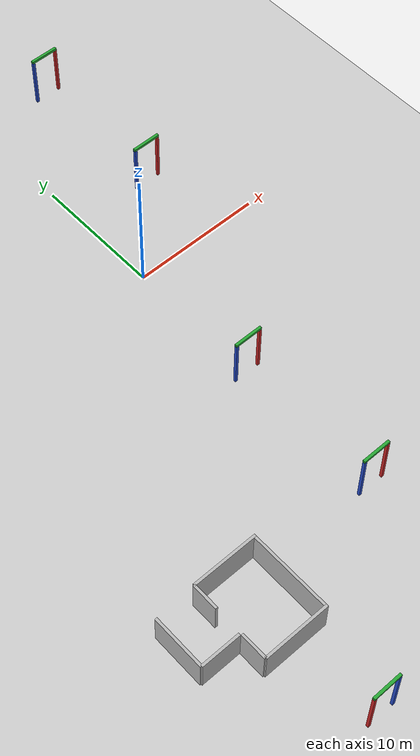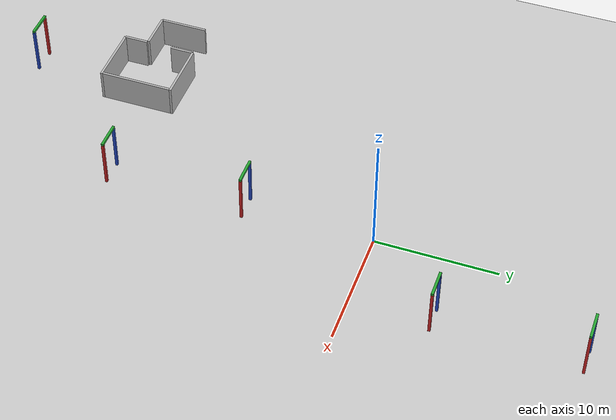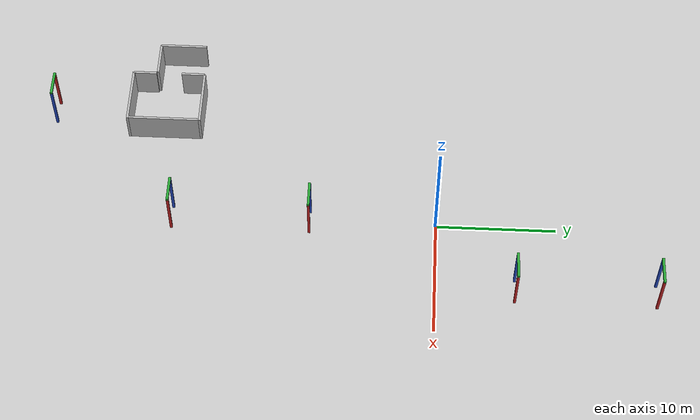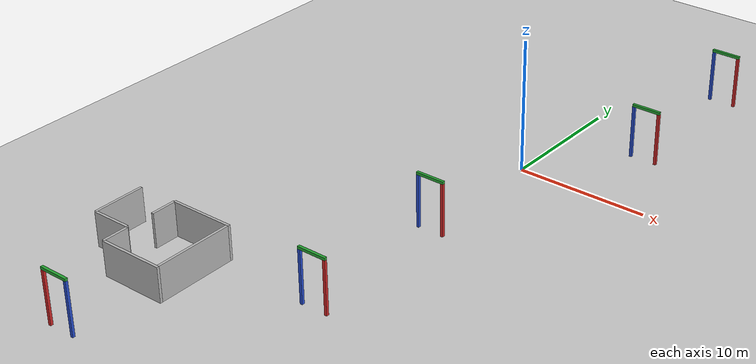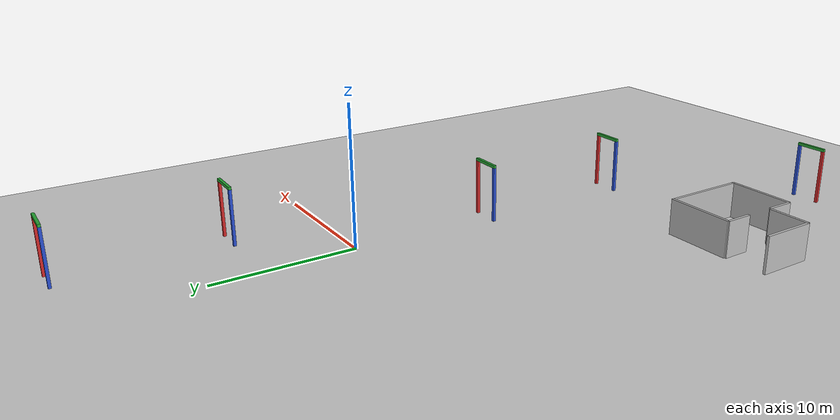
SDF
<sdf version="1.4">
 <world name="vrc_task_2">
  <scene><ambient>0.2 0.2 0.2 1.0</ambient></scene>
  <physics type="ode">
   <gravity>0 0 -9.81</gravity>
   <ode>
    <solver><type>quick</type><iters>50</iters><sor>1.4</sor></solver>
    <constraints>
     <cfm>0.0</cfm>
     <erp>0.2</erp>
     <contact_max_correcting_vel>100.0</contact_max_correcting_vel>
     <contact_surface_layer>0.0</contact_surface_layer>
    </constraints>
   </ode>
   <real_time_update_rate>1000</real_time_update_rate>
   <max_step_size>0.001</max_step_size>
  </physics>
  <light type="directional" name="sun">
   <pose>0 0 100 0 0 0</pose>
   <diffuse>0.8 0.8 0.8 1</diffuse>
   <specular>0.1 0.1 0.1 1</specular>
   <attenuation>
    <range>1000</range>
    <constant>0.9</constant>
    <linear>0.01</linear>
    <quadratic>0.001</quadratic>
   </attenuation>
   <direction>0.2 0.0 -1.0</direction>
  </light>
  <light type="point" name="light_bulb">
   <cast_shadows>false</cast_shadows>
   <pose>-14.12 -25.34 5 0 0 0</pose>
   <diffuse>0.3 0.3 0.3 1</diffuse>
   <specular>0.0 0.0 0.0 1</specular>
   <attenuation>
    <range>80</range>
    <constant>0.9</constant>
    <linear>0.01</linear>
    <quadratic>0.001</quadratic>
   </attenuation>
  </light>
  <include><uri>model://starting_pen</uri><pose>-10.713 -23.566 0.02 0 0 -3.14159265</pose></include>
  <include><uri>model://gate</uri><name>gate_0</name><pose>-10.4149 -33.0149 2.0 0 0 -1.5707</pose></include>
  <include><uri>model://gate</uri><name>gate_1</name><pose>0 -22 2.0 0 0 1.5707</pose></include>
  <include><uri>model://gate</uri><name>gate_2</name><pose>0 -10.5 2.0 0 0 1.5707</pose></include>
  <include><uri>model://gate</uri><name>gate_3</name><pose>6.0 6.5 2.0 0 0 1.5707</pose></include>
  <include><uri>model://gate</uri><name>gate_4</name><pose>6 18 2 0 0 1.5707</pose></include>
  <model name="mud_ground_plane">
   <static>true</static>
   <pose>0.0 0.0 -0.59 0 0 0</pose>
   <link name="link">
    <collision name="collision">
     <geometry><plane><normal>0 0 1</normal><size>100 100</size></plane></geometry>
     <surface><friction><ode><mu>.5</mu><mu2>.5</mu2></ode></friction></surface>
    </collision>
    <visual name="visual">
     <cast_shadows>false</cast_shadows>
     <geometry><plane><normal>0 0 1</normal><size>100 100</size></plane></geometry>
     <material>
      <script>
       <uri>model://mud_box/materials/scripts</uri>
       <uri>model://mud_box/materials/textures</uri>
       <name>vrc/mud</name>
      </script>
     </material>
    </visual>
   </link>
  </model>
  <plugin filename="libVRCPlugin.so" name="vrc_plugin">
   <atlas><model_name>atlas</model_name><pin_link>utorso</pin_link></atlas>
   <drc_vehicle><model_name>golf_cart</model_name><seat_link>chassis</seat_link></drc_vehicle>
   <drc_fire_hose>
    <fire_hose_model>fire_hose</fire_hose_model>
    <coupling_link>coupling</coupling_link>
    <standpipe_model>standpipe</standpipe_model>
    <spout_link>standpipe</spout_link>
    <thread_pitch>-1000</thread_pitch>
    <coupling_relative_pose>1.17038e-05 -0.125623 0.35 -0.0412152 -1.57078 1.61199</coupling_relative_pose>
   </drc_fire_hose>
  </plugin>
  <plugin filename="libVRCScoringPlugin.so" name="vrc_scoring">
   <score_file>/tmp/vrc_final_task6/score.log</score_file>
  </plugin>
 </world>
</sdf>

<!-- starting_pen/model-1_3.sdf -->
<sdf version="1.3">
  <model name="starting_pen">
    <static>true</static>
    <pose>-2.0 0 2.0 0 0 0</pose>

    <link name="link">
      <collision name="back_collision">
        <pose>-2 0 0 0 0 0</pose>
        <geometry>
          <box>
            <size>0.2 6 4.0</size>
          </box>
        </geometry>
      </collision>
      <visual name="back_visual">
        <pose>-2 0 0 0 0 0</pose>
        <geometry>
          <box>
            <size>0.2 6 4.0</size>
          </box>
        </geometry>
        <material>
          <script>
            <uri>file://media/materials/scripts/drc_qual.material</uri>
            <name>DRCQual/WarningWall</name>
          </script>
        </material>
      </visual>

      <collision name="left_collision">
        <pose>0.4 -3.1 0 0 0 0</pose>
        <geometry>
          <box>
            <size>5 0.2 4.0</size>
          </box>
        </geometry>
      </collision>
      <visual name="left_visual_lower">
        <pose>0.4 -3.1 0.0 0 0 0</pose>
        <geometry>
          <box>
            <size>5 0.2 4.0</size>
          </box>
        </geometry>
        <material>
          <script>
            <uri>file://media/materials/scripts/drc_qual.material</uri>
            <name>DRCQual/WarningWall</name>
          </script>
        </material>
      </visual>

      <collision name="right_collision">
        <pose>0.4 3.1 0 0 0 0</pose>
        <geometry>
          <box>
            <size>5 0.2 4.0</size>
          </box>
        </geometry>
      </collision>
      <visual name="right_visual">
        <pose>0.4 3.1 0 0 0 0</pose>
        <geometry>
          <box>
            <size>5 0.2 4.0</size>
          </box>
        </geometry>
        <material>
          <script>
            <uri>file://media/materials/scripts/drc_qual.material</uri>
            <name>DRCQual/WarningWall</name>
          </script>
        </material>
      </visual>

      <collision name="front_right_collision">
        <pose>2.9 2.1 0 0 0 0</pose>
        <geometry>
          <box>
            <size>0.2 2.0 4.0</size>
          </box>
        </geometry>
      </collision>
      <visual name="front_right_visual">
        <pose>2.9 2.1 0 0 0 0</pose>
        <geometry>
          <box>
            <size>0.2 2.0 4.0</size>
          </box>
        </geometry>
        <material>
          <script>
            <uri>file://media/materials/scripts/drc_qual.material</uri>
            <name>DRCQual/WarningWall</name>
          </script>
        </material>
      </visual>

      <collision name="front_left_collision">
        <pose>2.9 -2.1 0 0 0 0</pose>
        <geometry>
          <box>
            <size>0.2 2.0 4.0</size>
          </box>
        </geometry>
      </collision>
      <visual name="front_left_visual">
        <pose>2.9 -2.1 0 0 0 0</pose>
        <geometry>
          <box>
            <size>0.2 2.0 4.0</size>
          </box>
        </geometry>
        <material>
          <script>
            <uri>file://media/materials/scripts/drc_qual.material</uri>
            <name>DRCQual/WarningWall</name>
          </script>
        </material>
      </visual>

      <collision name="front_collision">
        <pose>6.0 -1 0 0 0 0</pose>
        <geometry>
          <box>
            <size>0.2 4 4.0</size>
          </box>
        </geometry>
      </collision>
      <visual name="front_visual">
        <pose>6.0 -1 0 0 0 3.1415</pose>
        <geometry>
          <mesh>
            <uri>model://arrow_wall/meshes/arrow_wall.dae</uri>
          </mesh>
        </geometry>
      </visual>

      <collision name="entryway_collision">
        <pose>4.5 1.0 0 0 0 0</pose>
        <geometry>
          <box>
            <size>3.0 .2 4.0</size>
          </box>
        </geometry>
      </collision>
      <visual name="entryway_visual">
        <pose>4.5 1.0 0 0 0 0</pose>
        <geometry>
          <box>
            <size>3.0 .2 4.0</size>
          </box>
        </geometry>
        <material>
          <script>
            <uri>file://media/materials/scripts/drc_qual.material</uri>
            <name>DRCQual/WarningWall</name>
          </script>
        </material>
      </visual>

    </link>
  </model>
</sdf>

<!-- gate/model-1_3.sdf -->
<sdf version="1.3">

  <model name="gate">
    <static>true</static>
    <pose>0 0 2.0 0 0 0</pose>
    <link name="link">
      <collision name="right_collision">
        <pose>0 -1.0 0 0 0 0</pose>
        <geometry>
          <box>
            <size>0.2 0.2 4.0</size>
          </box>
        </geometry>
      </collision>
      <visual name="right_visual">
        <pose>0 -1.0 0 0 0 0</pose>
        <geometry>
          <box>
            <size>0.2 0.2 4.0</size>
          </box>
        </geometry>
        <material>
          <script>
            <uri>model://gate/materials/scripts/gate.material</uri>
            <uri>model://gate/materials/textures</uri>
            <name>vrc/red_gate</name>
          </script>
        </material>
      </visual>

      <collision name="left_collision">
        <pose>0 1.0 0 0 0 0</pose>
        <geometry>
          <box>
            <size>0.2 0.2 4.0</size>
          </box>
        </geometry>
      </collision>
      <visual name="left_visual">
        <pose>0 1.0 0 0 0 0</pose>
        <geometry>
          <box>
            <size>0.2 0.2 4.0</size>
          </box>
        </geometry>
        <material>
          <script>
            <uri>model://gate/materials/scripts/gate.material</uri>
            <uri>model://gate/materials/textures</uri>
            <name>vrc/blue_gate</name>
          </script>
        </material>
      </visual>

      <collision name="top_collision">
        <pose>0 0 2.1 0 0 0</pose>
        <geometry>
          <box>
            <size>0.2 2.2 0.2</size>
          </box>
        </geometry>
      </collision>
      <visual name="top_visual">
        <pose>0 0 2.1 0 0 0</pose>
        <geometry>
          <box>
            <size>0.2 2.2 0.2</size>
          </box>
        </geometry>
        <material>
          <script>
            <uri>model://gate/materials/scripts/gate.material</uri>
            <uri>model://gate/materials/textures</uri>
            <name>vrc/green_gate</name>
          </script>
        </material>
      </visual>
    </link>
  </model>
</sdf>
